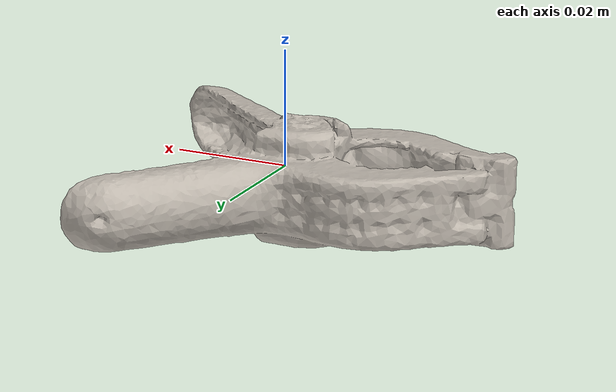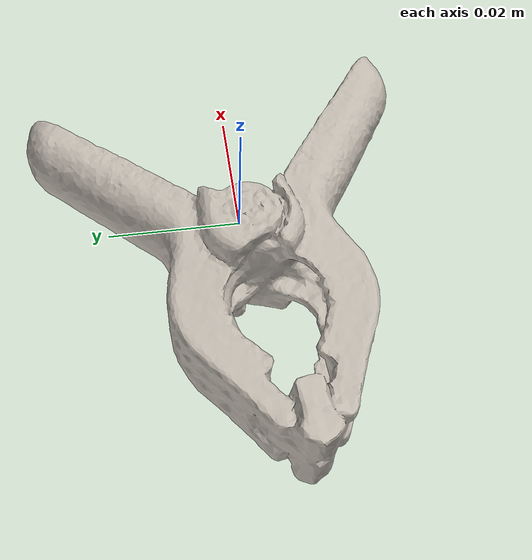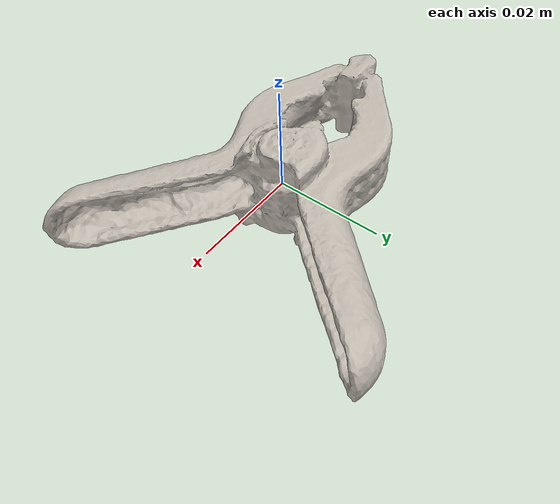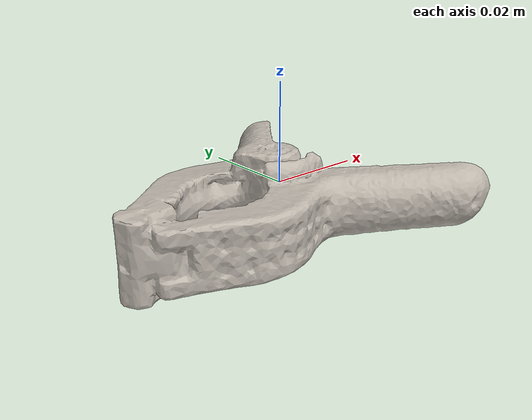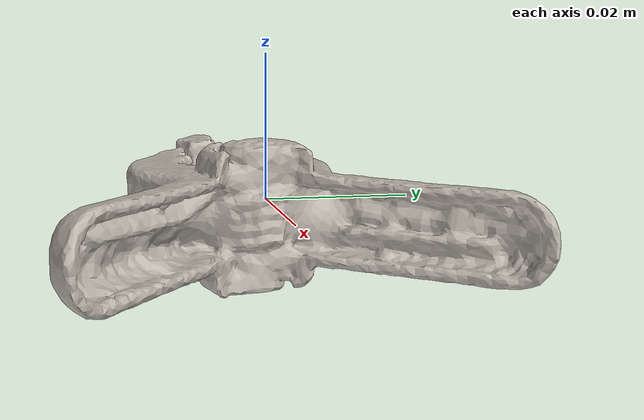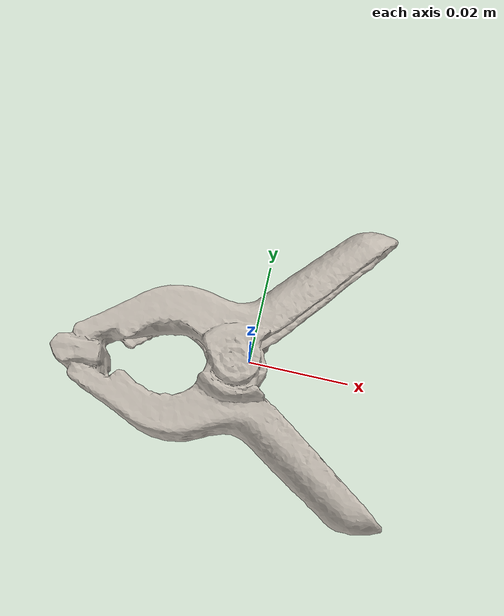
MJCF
<mujoco model="bread">
  <asset>
    <mesh file="nontextured.stl" name="obj_mesh" scale="0.8 0.8 0.8"/>
    <texture file="../../../../../textures/bread.png" type="2d" name="tex-bread" />
    <material name="bread" reflectance="0.7" texrepeat="15 15" texture="tex-bread" texuniform="true"/>
  </asset>
  <worldbody>
    <body>
      <body name="collision">
        <geom pos="-0.016096 0.010131999999999999 -0.01264" mesh="obj_mesh" type="mesh" solimp="0.998 0.998 0.001" solref="0.001 1" density="50" friction="0.95 0.3 0.1"  material="bread" group="1" condim="4"/>
      </body>
      <body name="visual">
        <geom pos="-0.016096 0.010131999999999999 -0.01264" mesh="obj_mesh" type="mesh" material="bread"  conaffinity="0" contype="0"  group="0" mass="0.0001"/>
        <geom pos="-0.016096 0.010131999999999999 -0.01264" mesh="obj_mesh" type="mesh" material="bread"  conaffinity="0" contype="0"  group="1" mass="0.0001"/>
      </body>
      <site rgba="0 0 0 0" size="0.005" pos="0 0 -0.013028" name="bottom_site"/>
      <site rgba="0 0 0 0" size="0.005" pos="0 0 0.013028" name="top_site"/>
      <site rgba="0 0 0 0" size="0.005" pos="0.044463 0.038391999999999996 0.013028" name="horizontal_radius_site"/>
    </body>
  </worldbody>
</mujoco>
